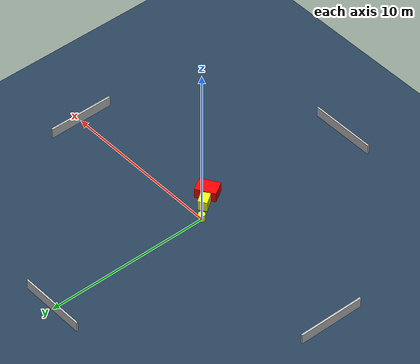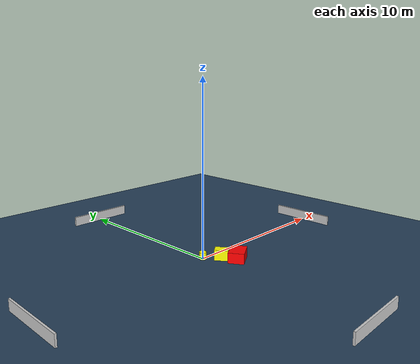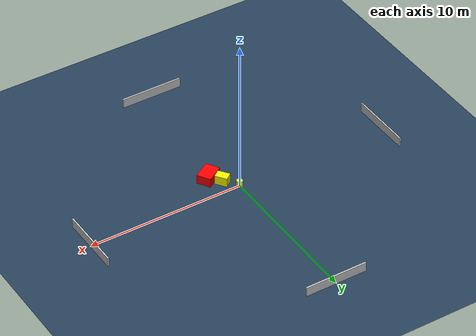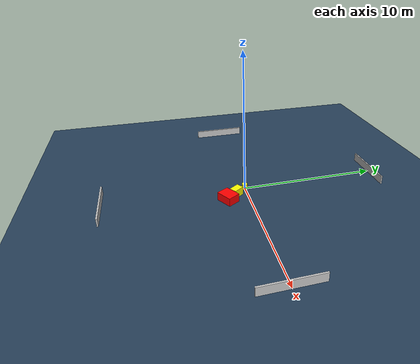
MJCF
<?xml version="1.0" ?>
<mujoco model="generated_environment">
  <option timestep="0.01" integrator="RK4" cone="elliptic"/>
  <default>
    <geom density="1"/>
  </default>
  <asset>
    <texture builtin="gradient" height="3072" name="skybox" rgb1="0.3 0.5 0.7" rgb2="0 0 0" type="skybox" width="512"/>
    <texture builtin="checker" height="300" name="groundplane" rgb1="0.2 0.3 0.4" rgb2="0.1 0.2 0.3" type="2d" width="300"/>
    <material name="groundplane" reflectance="0.2" texrepeat="5 5" texture="groundplane"/>
  </asset>
  <worldbody>
    <light dir="0 0 -1" directional="true" pos="0 0 1.5"/>
    <geom condim="3" friction="0.5 0.005 0.001" material="groundplane" name="floor" pos="0 0 0" size="0 0 0.05" type="plane"/>
    <body name="walls">
      <geom name="wall_1" condim="4" pos="-10.0 0.0 0.3" rgba="0.800000011920929 0.800000011920929 0.800000011920929 1.0" size="0.05 2.0 0.3" type="box"/>
      <geom name="wall_2" condim="4" pos="10.0 0.0 0.3" rgba="0.800000011920929 0.800000011920929 0.800000011920929 1.0" size="0.05 2.0 0.3" type="box"/>
      <geom name="wall_3" condim="4" pos="0.0 -10.0 0.3" rgba="0.800000011920929 0.800000011920929 0.800000011920929 1.0" size="2.0 0.05 0.3" type="box"/>
      <geom name="wall_4" condim="4" pos="0.0 10.0 0.3" rgba="0.800000011920929 0.800000011920929 0.800000011920929 1.0" size="2.0 0.05 0.3" type="box"/>
    </body>
    <body name="robot">
      <joint name="joint_x" type="slide" pos="0 0 0" axis="1 0 0"/>
      <joint name="joint_y" type="slide" pos="0 0 0" axis="0 1 0"/>
      <geom name="robot" type="cylinder" pos="0.0 0.0 0.2" size="0.2 0.2 0.0" mass="5.0" friction="1.0 0.005 0.0001" condim="4" rgba="1.0 1.0 0.0 1.0"/>
    </body>
    <body name="obstacle_1_movable">
      <geom name="obstacle_1_movable" condim="4" pos="0.7040137529461338 -0.7714410881736575 0.3" euler="0 0 35.50207526928213" friction="0.0 0.005 0.001" rgba="1.0 1.0 0.0 1.0" size="0.27136487369210494 0.3927480483430068 0.3" type="box" mass="0.1"/>
      <joint type="free"/>
    </body>
    <body name="obstacle_2_static">
      <geom name="obstacle_2_static" condim="4" pos="1.2392459176261115 -1.4724098886316965 0.3" euler="0 0 211.4043588855027" friction="0.0 0.005 0.001" rgba="1.0 0.0 0.0 1.0" size="0.6045853768427707 0.4521374241292109 0.3" type="box"/>
    </body>
  </worldbody>
  <actuator>
    <motor name="actuator_x" joint="joint_x" gear="1" ctrlrange="-1 1"/>
    <motor name="actuator_y" joint="joint_y" gear="1" ctrlrange="-1 1"/>
  </actuator>
</mujoco>
